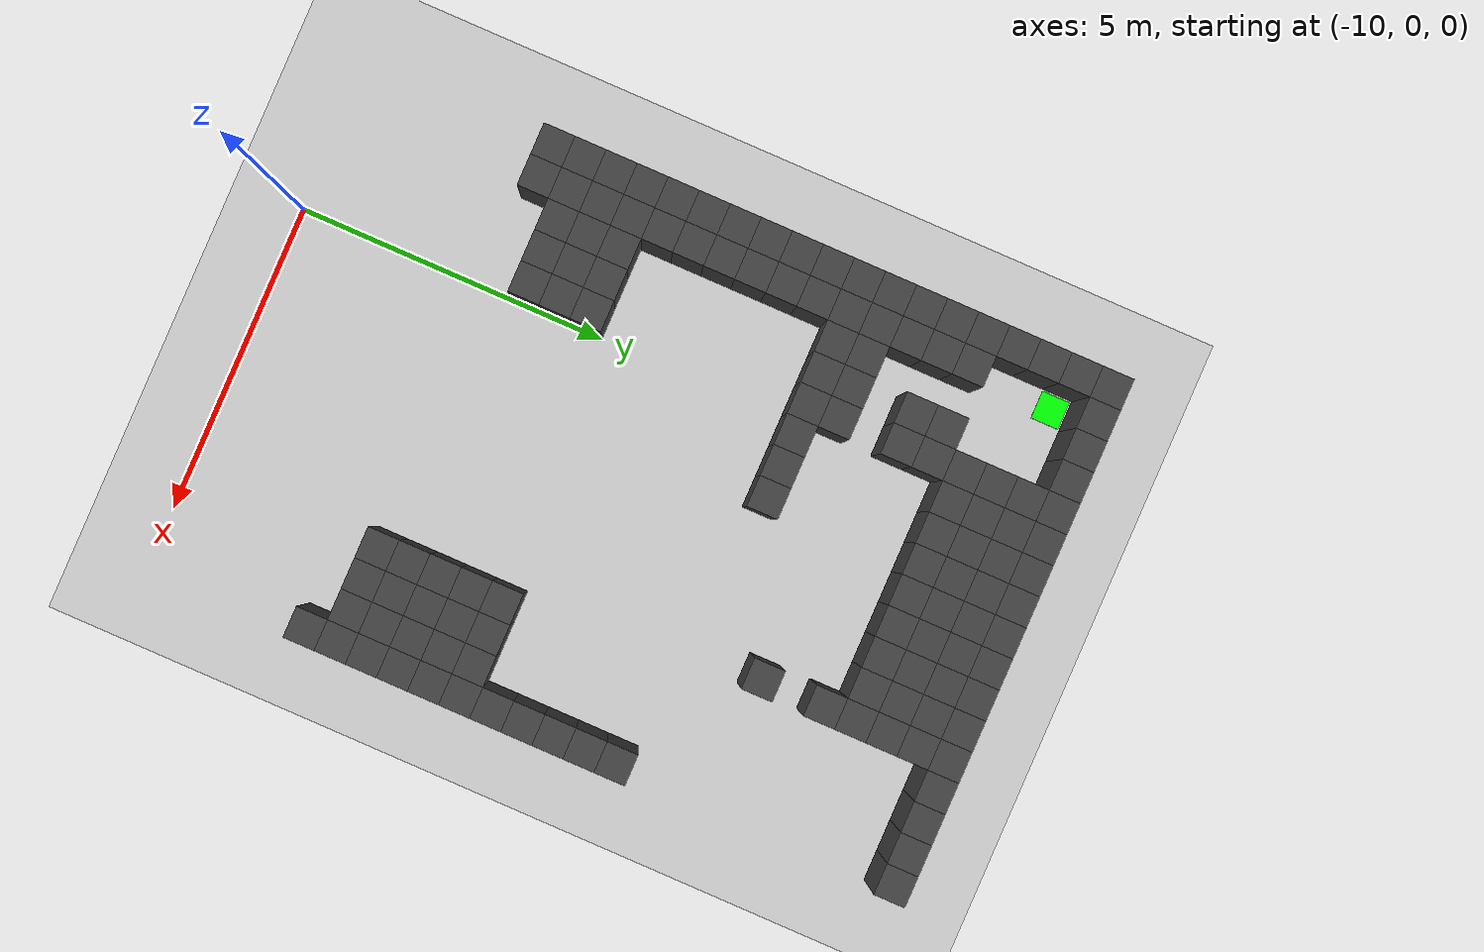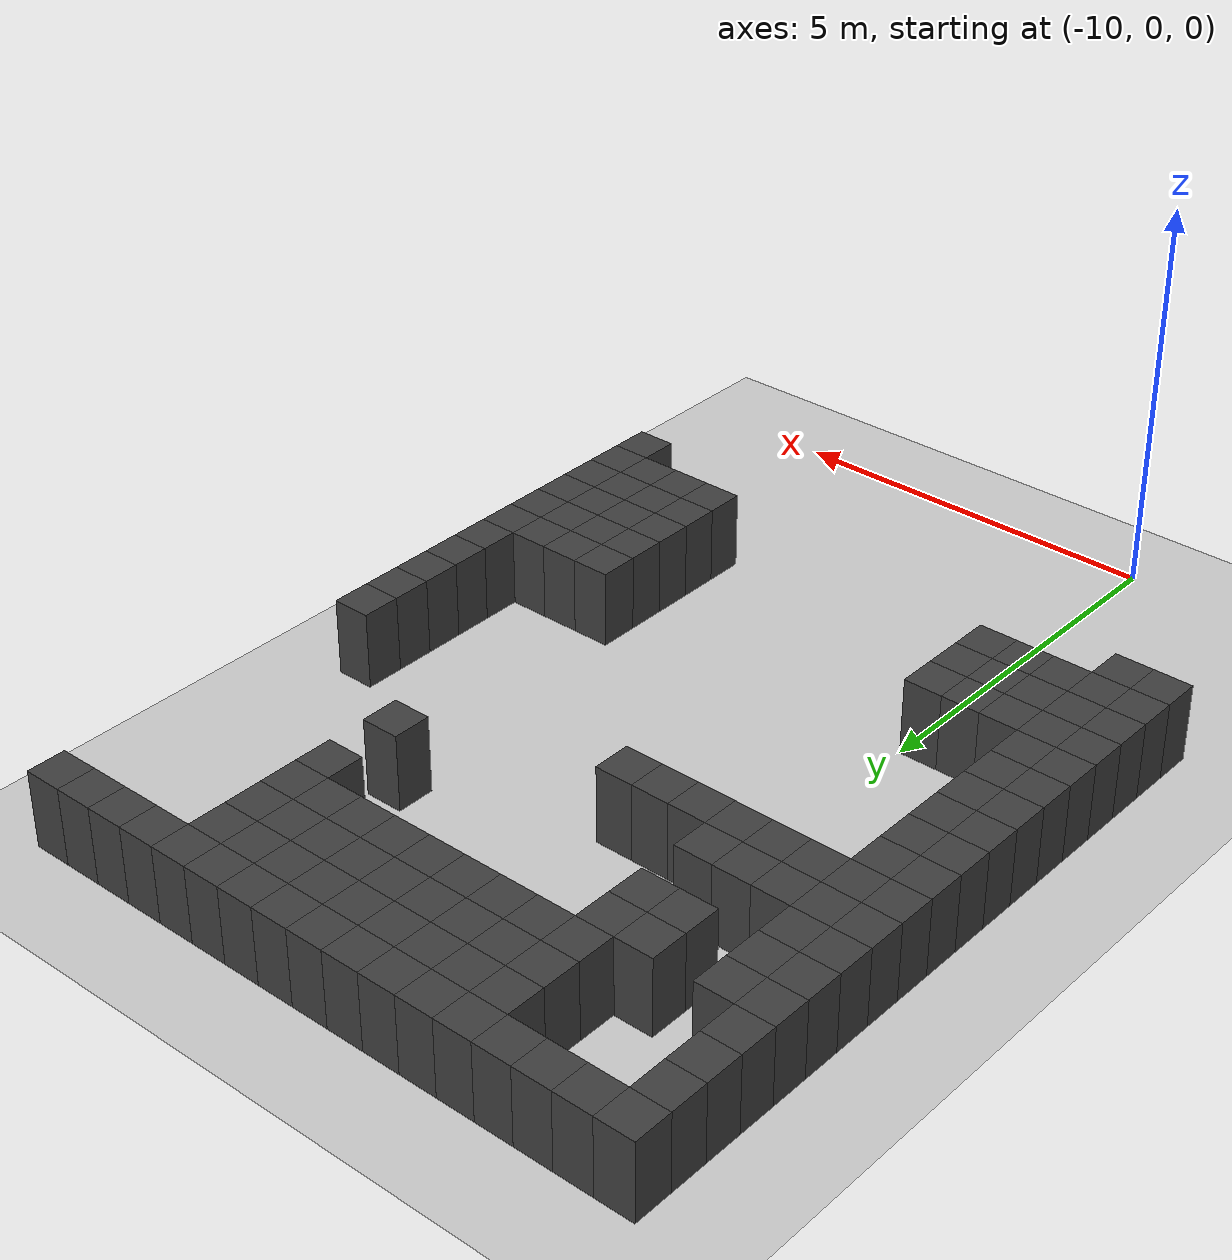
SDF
<sdf version="1.7">
 <world name="map_14735">
  <model name="ground_plane">
   <static>true</static>
   <link name="link">
    <collision name="collision">
     <geometry><plane><normal>0 0 1</normal><size>200 200</size></plane></geometry>
    </collision>
    <visual name="visual">
     <geometry><plane><normal>0 0 1</normal><size>200 200</size></plane></geometry>
     <material><ambient>0.8 0.8 0.8 1</ambient><diffuse>0.8 0.8 0.8 1</diffuse></material>
    </visual>
   </link>
  </model>
  <model name="maze_environment">
   <static>true</static>
   <link name="wall_0">
    <pose>-12.250 12.250 0.500 0 0 0</pose>
    <collision name="col"><geometry><box><size>0.5 0.5 1.0</size></box></geometry></collision>
    <visual name="vis">
     <geometry><box><size>0.5 0.5 1.0</size></box></geometry>
     <material><ambient>0.15 0.15 0.15 1</ambient><diffuse>0.25 0.25 0.25 1</diffuse></material>
    </visual>
   </link>
   <link name="wall_1">
    <pose>-11.750 12.250 0.500 0 0 0</pose>
    <collision name="col"><geometry><box><size>0.5 0.5 1.0</size></box></geometry></collision>
    <visual name="vis">
     <geometry><box><size>0.5 0.5 1.0</size></box></geometry>
     <material><ambient>0.15 0.15 0.15 1</ambient><diffuse>0.25 0.25 0.25 1</diffuse></material>
    </visual>
   </link>
   <link name="wall_2">
    <pose>-11.250 12.250 0.500 0 0 0</pose>
    <collision name="col"><geometry><box><size>0.5 0.5 1.0</size></box></geometry></collision>
    <visual name="vis">
     <geometry><box><size>0.5 0.5 1.0</size></box></geometry>
     <material><ambient>0.15 0.15 0.15 1</ambient><diffuse>0.25 0.25 0.25 1</diffuse></material>
    </visual>
   </link>
   <link name="wall_3">
    <pose>-10.750 12.250 0.500 0 0 0</pose>
    <collision name="col"><geometry><box><size>0.5 0.5 1.0</size></box></geometry></collision>
    <visual name="vis">
     <geometry><box><size>0.5 0.5 1.0</size></box></geometry>
     <material><ambient>0.15 0.15 0.15 1</ambient><diffuse>0.25 0.25 0.25 1</diffuse></material>
    </visual>
   </link>
   <link name="wall_4">
    <pose>-10.250 12.250 0.500 0 0 0</pose>
    <collision name="col"><geometry><box><size>0.5 0.5 1.0</size></box></geometry></collision>
    <visual name="vis">
     <geometry><box><size>0.5 0.5 1.0</size></box></geometry>
     <material><ambient>0.15 0.15 0.15 1</ambient><diffuse>0.25 0.25 0.25 1</diffuse></material>
    </visual>
   </link>
   <link name="wall_5">
    <pose>-9.750 12.250 0.500 0 0 0</pose>
    <collision name="col"><geometry><box><size>0.5 0.5 1.0</size></box></geometry></collision>
    <visual name="vis">
     <geometry><box><size>0.5 0.5 1.0</size></box></geometry>
     <material><ambient>0.15 0.15 0.15 1</ambient><diffuse>0.25 0.25 0.25 1</diffuse></material>
    </visual>
   </link>
   <link name="wall_6">
    <pose>-9.250 12.250 0.500 0 0 0</pose>
    <collision name="col"><geometry><box><size>0.5 0.5 1.0</size></box></geometry></collision>
    <visual name="vis">
     <geometry><box><size>0.5 0.5 1.0</size></box></geometry>
     <material><ambient>0.15 0.15 0.15 1</ambient><diffuse>0.25 0.25 0.25 1</diffuse></material>
    </visual>
   </link>
   <link name="wall_7">
    <pose>-8.750 12.250 0.500 0 0 0</pose>
    <collision name="col"><geometry><box><size>0.5 0.5 1.0</size></box></geometry></collision>
    <visual name="vis">
     <geometry><box><size>0.5 0.5 1.0</size></box></geometry>
     <material><ambient>0.15 0.15 0.15 1</ambient><diffuse>0.25 0.25 0.25 1</diffuse></material>
    </visual>
   </link>
   <link name="wall_8">
    <pose>-8.250 12.250 0.500 0 0 0</pose>
    <collision name="col"><geometry><box><size>0.5 0.5 1.0</size></box></geometry></collision>
    <visual name="vis">
     <geometry><box><size>0.5 0.5 1.0</size></box></geometry>
     <material><ambient>0.15 0.15 0.15 1</ambient><diffuse>0.25 0.25 0.25 1</diffuse></material>
    </visual>
   </link>
   <link name="wall_9">
    <pose>-7.750 12.250 0.500 0 0 0</pose>
    <collision name="col"><geometry><box><size>0.5 0.5 1.0</size></box></geometry></collision>
    <visual name="vis">
     <geometry><box><size>0.5 0.5 1.0</size></box></geometry>
     <material><ambient>0.15 0.15 0.15 1</ambient><diffuse>0.25 0.25 0.25 1</diffuse></material>
    </visual>
   </link>
   <link name="wall_10">
    <pose>-7.250 12.250 0.500 0 0 0</pose>
    <collision name="col"><geometry><box><size>0.5 0.5 1.0</size></box></geometry></collision>
    <visual name="vis">
     <geometry><box><size>0.5 0.5 1.0</size></box></geometry>
     <material><ambient>0.15 0.15 0.15 1</ambient><diffuse>0.25 0.25 0.25 1</diffuse></material>
    </visual>
   </link>
   <link name="wall_11">
    <pose>-6.750 12.250 0.500 0 0 0</pose>
    <collision name="col"><geometry><box><size>0.5 0.5 1.0</size></box></geometry></collision>
    <visual name="vis">
     <geometry><box><size>0.5 0.5 1.0</size></box></geometry>
     <material><ambient>0.15 0.15 0.15 1</ambient><diffuse>0.25 0.25 0.25 1</diffuse></material>
    </visual>
   </link>
   <link name="wall_12">
    <pose>-6.250 12.250 0.500 0 0 0</pose>
    <collision name="col"><geometry><box><size>0.5 0.5 1.0</size></box></geometry></collision>
    <visual name="vis">
     <geometry><box><size>0.5 0.5 1.0</size></box></geometry>
     <material><ambient>0.15 0.15 0.15 1</ambient><diffuse>0.25 0.25 0.25 1</diffuse></material>
    </visual>
   </link>
   <link name="wall_13">
    <pose>-5.750 12.250 0.500 0 0 0</pose>
    <collision name="col"><geometry><box><size>0.5 0.5 1.0</size></box></geometry></collision>
    <visual name="vis">
     <geometry><box><size>0.5 0.5 1.0</size></box></geometry>
     <material><ambient>0.15 0.15 0.15 1</ambient><diffuse>0.25 0.25 0.25 1</diffuse></material>
    </visual>
   </link>
   <link name="wall_14">
    <pose>-5.250 12.250 0.500 0 0 0</pose>
    <collision name="col"><geometry><box><size>0.5 0.5 1.0</size></box></geometry></collision>
    <visual name="vis">
     <geometry><box><size>0.5 0.5 1.0</size></box></geometry>
     <material><ambient>0.15 0.15 0.15 1</ambient><diffuse>0.25 0.25 0.25 1</diffuse></material>
    </visual>
   </link>
   <link name="wall_15">
    <pose>-4.750 12.250 0.500 0 0 0</pose>
    <collision name="col"><geometry><box><size>0.5 0.5 1.0</size></box></geometry></collision>
    <visual name="vis">
     <geometry><box><size>0.5 0.5 1.0</size></box></geometry>
     <material><ambient>0.15 0.15 0.15 1</ambient><diffuse>0.25 0.25 0.25 1</diffuse></material>
    </visual>
   </link>
   <link name="wall_16">
    <pose>-4.250 12.250 0.500 0 0 0</pose>
    <collision name="col"><geometry><box><size>0.5 0.5 1.0</size></box></geometry></collision>
    <visual name="vis">
     <geometry><box><size>0.5 0.5 1.0</size></box></geometry>
     <material><ambient>0.15 0.15 0.15 1</ambient><diffuse>0.25 0.25 0.25 1</diffuse></material>
    </visual>
   </link>
   <link name="wall_50">
    <pose>-12.250 11.750 0.500 0 0 0</pose>
    <collision name="col"><geometry><box><size>0.5 0.5 1.0</size></box></geometry></collision>
    <visual name="vis">
     <geometry><box><size>0.5 0.5 1.0</size></box></geometry>
     <material><ambient>0.15 0.15 0.15 1</ambient><diffuse>0.25 0.25 0.25 1</diffuse></material>
    </visual>
   </link>
   <link name="wall_51">
    <pose>-10.250 11.750 0.500 0 0 0</pose>
    <collision name="col"><geometry><box><size>0.5 0.5 1.0</size></box></geometry></collision>
    <visual name="vis">
     <geometry><box><size>0.5 0.5 1.0</size></box></geometry>
     <material><ambient>0.15 0.15 0.15 1</ambient><diffuse>0.25 0.25 0.25 1</diffuse></material>
    </visual>
   </link>
   <link name="wall_52">
    <pose>-9.750 11.750 0.500 0 0 0</pose>
    <collision name="col"><geometry><box><size>0.5 0.5 1.0</size></box></geometry></collision>
    <visual name="vis">
     <geometry><box><size>0.5 0.5 1.0</size></box></geometry>
     <material><ambient>0.15 0.15 0.15 1</ambient><diffuse>0.25 0.25 0.25 1</diffuse></material>
    </visual>
   </link>
   <link name="wall_53">
    <pose>-9.250 11.750 0.500 0 0 0</pose>
    <collision name="col"><geometry><box><size>0.5 0.5 1.0</size></box></geometry></collision>
    <visual name="vis">
     <geometry><box><size>0.5 0.5 1.0</size></box></geometry>
     <material><ambient>0.15 0.15 0.15 1</ambient><diffuse>0.25 0.25 0.25 1</diffuse></material>
    </visual>
   </link>
   <link name="wall_54">
    <pose>-8.750 11.750 0.500 0 0 0</pose>
    <collision name="col"><geometry><box><size>0.5 0.5 1.0</size></box></geometry></collision>
    <visual name="vis">
     <geometry><box><size>0.5 0.5 1.0</size></box></geometry>
     <material><ambient>0.15 0.15 0.15 1</ambient><diffuse>0.25 0.25 0.25 1</diffuse></material>
    </visual>
   </link>
   <link name="wall_55">
    <pose>-8.250 11.750 0.500 0 0 0</pose>
    <collision name="col"><geometry><box><size>0.5 0.5 1.0</size></box></geometry></collision>
    <visual name="vis">
     <geometry><box><size>0.5 0.5 1.0</size></box></geometry>
     <material><ambient>0.15 0.15 0.15 1</ambient><diffuse>0.25 0.25 0.25 1</diffuse></material>
    </visual>
   </link>
   <link name="wall_56">
    <pose>-7.750 11.750 0.500 0 0 0</pose>
    <collision name="col"><geometry><box><size>0.5 0.5 1.0</size></box></geometry></collision>
    <visual name="vis">
     <geometry><box><size>0.5 0.5 1.0</size></box></geometry>
     <material><ambient>0.15 0.15 0.15 1</ambient><diffuse>0.25 0.25 0.25 1</diffuse></material>
    </visual>
   </link>
   <link name="wall_57">
    <pose>-7.250 11.750 0.500 0 0 0</pose>
    <collision name="col"><geometry><box><size>0.5 0.5 1.0</size></box></geometry></collision>
    <visual name="vis">
     <geometry><box><size>0.5 0.5 1.0</size></box></geometry>
     <material><ambient>0.15 0.15 0.15 1</ambient><diffuse>0.25 0.25 0.25 1</diffuse></material>
    </visual>
   </link>
   <link name="wall_58">
    <pose>-6.750 11.750 0.500 0 0 0</pose>
    <collision name="col"><geometry><box><size>0.5 0.5 1.0</size></box></geometry></collision>
    <visual name="vis">
     <geometry><box><size>0.5 0.5 1.0</size></box></geometry>
     <material><ambient>0.15 0.15 0.15 1</ambient><diffuse>0.25 0.25 0.25 1</diffuse></material>
    </visual>
   </link>
   <link name="wall_59">
    <pose>-6.250 11.750 0.500 0 0 0</pose>
    <collision name="col"><geometry><box><size>0.5 0.5 1.0</size></box></geometry></collision>
    <visual name="vis">
     <geometry><box><size>0.5 0.5 1.0</size></box></geometry>
     <material><ambient>0.15 0.15 0.15 1</ambient><diffuse>0.25 0.25 0.25 1</diffuse></material>
    </visual>
   </link>
   <link name="wall_92">
    <pose>-12.250 11.250 0.500 0 0 0</pose>
    <collision name="col"><geometry><box><size>0.5 0.5 1.0</size></box></geometry></collision>
    <visual name="vis">
     <geometry><box><size>0.5 0.5 1.0</size></box></geometry>
     <material><ambient>0.15 0.15 0.15 1</ambient><diffuse>0.25 0.25 0.25 1</diffuse></material>
    </visual>
   </link>
   <link name="wall_93">
    <pose>-10.250 11.250 0.500 0 0 0</pose>
    <collision name="col"><geometry><box><size>0.5 0.5 1.0</size></box></geometry></collision>
    <visual name="vis">
     <geometry><box><size>0.5 0.5 1.0</size></box></geometry>
     <material><ambient>0.15 0.15 0.15 1</ambient><diffuse>0.25 0.25 0.25 1</diffuse></material>
    </visual>
   </link>
   <link name="wall_94">
    <pose>-9.750 11.250 0.500 0 0 0</pose>
    <collision name="col"><geometry><box><size>0.5 0.5 1.0</size></box></geometry></collision>
    <visual name="vis">
     <geometry><box><size>0.5 0.5 1.0</size></box></geometry>
     <material><ambient>0.15 0.15 0.15 1</ambient><diffuse>0.25 0.25 0.25 1</diffuse></material>
    </visual>
   </link>
   <link name="wall_95">
    <pose>-9.250 11.250 0.500 0 0 0</pose>
    <collision name="col"><geometry><box><size>0.5 0.5 1.0</size></box></geometry></collision>
    <visual name="vis">
     <geometry><box><size>0.5 0.5 1.0</size></box></geometry>
     <material><ambient>0.15 0.15 0.15 1</ambient><diffuse>0.25 0.25 0.25 1</diffuse></material>
    </visual>
   </link>
   <link name="wall_96">
    <pose>-8.750 11.250 0.500 0 0 0</pose>
    <collision name="col"><geometry><box><size>0.5 0.5 1.0</size></box></geometry></collision>
    <visual name="vis">
     <geometry><box><size>0.5 0.5 1.0</size></box></geometry>
     <material><ambient>0.15 0.15 0.15 1</ambient><diffuse>0.25 0.25 0.25 1</diffuse></material>
    </visual>
   </link>
   <link name="wall_97">
    <pose>-8.250 11.250 0.500 0 0 0</pose>
    <collision name="col"><geometry><box><size>0.5 0.5 1.0</size></box></geometry></collision>
    <visual name="vis">
     <geometry><box><size>0.5 0.5 1.0</size></box></geometry>
     <material><ambient>0.15 0.15 0.15 1</ambient><diffuse>0.25 0.25 0.25 1</diffuse></material>
    </visual>
   </link>
   <link name="wall_98">
    <pose>-7.750 11.250 0.500 0 0 0</pose>
    <collision name="col"><geometry><box><size>0.5 0.5 1.0</size></box></geometry></collision>
    <visual name="vis">
     <geometry><box><size>0.5 0.5 1.0</size></box></geometry>
     <material><ambient>0.15 0.15 0.15 1</ambient><diffuse>0.25 0.25 0.25 1</diffuse></material>
    </visual>
   </link>
   <link name="wall_99">
    <pose>-7.250 11.250 0.500 0 0 0</pose>
    <collision name="col"><geometry><box><size>0.5 0.5 1.0</size></box></geometry></collision>
    <visual name="vis">
     <geometry><box><size>0.5 0.5 1.0</size></box></geometry>
     <material><ambient>0.15 0.15 0.15 1</ambient><diffuse>0.25 0.25 0.25 1</diffuse></material>
    </visual>
   </link>
   <link name="wall_100">
    <pose>-6.750 11.250 0.500 0 0 0</pose>
    <collision name="col"><geometry><box><size>0.5 0.5 1.0</size></box></geometry></collision>
    <visual name="vis">
     <geometry><box><size>0.5 0.5 1.0</size></box></geometry>
     <material><ambient>0.15 0.15 0.15 1</ambient><diffuse>0.25 0.25 0.25 1</diffuse></material>
    </visual>
   </link>
   <link name="wall_101">
    <pose>-6.250 11.250 0.500 0 0 0</pose>
    <collision name="col"><geometry><box><size>0.5 0.5 1.0</size></box></geometry></collision>
    <visual name="vis">
     <geometry><box><size>0.5 0.5 1.0</size></box></geometry>
     <material><ambient>0.15 0.15 0.15 1</ambient><diffuse>0.25 0.25 0.25 1</diffuse></material>
    </visual>
   </link>
   <link name="wall_134">
    <pose>-12.250 10.750 0.500 0 0 0</pose>
    <collision name="col"><geometry><box><size>0.5 0.5 1.0</size></box></geometry></collision>
    <visual name="vis">
     <geometry><box><size>0.5 0.5 1.0</size></box></geometry>
     <material><ambient>0.15 0.15 0.15 1</ambient><diffuse>0.25 0.25 0.25 1</diffuse></material>
    </visual>
   </link>
   <link name="wall_135">
    <pose>-10.250 10.750 0.500 0 0 0</pose>
    <collision name="col"><geometry><box><size>0.5 0.5 1.0</size></box></geometry></collision>
    <visual name="vis">
     <geometry><box><size>0.5 0.5 1.0</size></box></geometry>
     <material><ambient>0.15 0.15 0.15 1</ambient><diffuse>0.25 0.25 0.25 1</diffuse></material>
    </visual>
   </link>
   <link name="wall_136">
    <pose>-9.750 10.750 0.500 0 0 0</pose>
    <collision name="col"><geometry><box><size>0.5 0.5 1.0</size></box></geometry></collision>
    <visual name="vis">
     <geometry><box><size>0.5 0.5 1.0</size></box></geometry>
     <material><ambient>0.15 0.15 0.15 1</ambient><diffuse>0.25 0.25 0.25 1</diffuse></material>
    </visual>
   </link>
   <link name="wall_137">
    <pose>-9.250 10.750 0.500 0 0 0</pose>
    <collision name="col"><geometry><box><size>0.5 0.5 1.0</size></box></geometry></collision>
    <visual name="vis">
     <geometry><box><size>0.5 0.5 1.0</size></box></geometry>
     <material><ambient>0.15 0.15 0.15 1</ambient><diffuse>0.25 0.25 0.25 1</diffuse></material>
    </visual>
   </link>
   <link name="wall_138">
    <pose>-8.750 10.750 0.500 0 0 0</pose>
    <collision name="col"><geometry><box><size>0.5 0.5 1.0</size></box></geometry></collision>
    <visual name="vis">
     <geometry><box><size>0.5 0.5 1.0</size></box></geometry>
     <material><ambient>0.15 0.15 0.15 1</ambient><diffuse>0.25 0.25 0.25 1</diffuse></material>
    </visual>
   </link>
   <link name="wall_139">
    <pose>-8.250 10.750 0.500 0 0 0</pose>
    <collision name="col"><geometry><box><size>0.5 0.5 1.0</size></box></geometry></collision>
    <visual name="vis">
     <geometry><box><size>0.5 0.5 1.0</size></box></geometry>
     <material><ambient>0.15 0.15 0.15 1</ambient><diffuse>0.25 0.25 0.25 1</diffuse></material>
    </visual>
   </link>
   <link name="wall_140">
    <pose>-7.750 10.750 0.500 0 0 0</pose>
    <collision name="col"><geometry><box><size>0.5 0.5 1.0</size></box></geometry></collision>
    <visual name="vis">
     <geometry><box><size>0.5 0.5 1.0</size></box></geometry>
     <material><ambient>0.15 0.15 0.15 1</ambient><diffuse>0.25 0.25 0.25 1</diffuse></material>
    </visual>
   </link>
   <link name="wall_141">
    <pose>-7.250 10.750 0.500 0 0 0</pose>
    <collision name="col"><geometry><box><size>0.5 0.5 1.0</size></box></geometry></collision>
    <visual name="vis">
     <geometry><box><size>0.5 0.5 1.0</size></box></geometry>
     <material><ambient>0.15 0.15 0.15 1</ambient><diffuse>0.25 0.25 0.25 1</diffuse></material>
    </visual>
   </link>
   <link name="wall_142">
    <pose>-6.750 10.750 0.500 0 0 0</pose>
    <collision name="col"><geometry><box><size>0.5 0.5 1.0</size></box></geometry></collision>
    <visual name="vis">
     <geometry><box><size>0.5 0.5 1.0</size></box></geometry>
     <material><ambient>0.15 0.15 0.15 1</ambient><diffuse>0.25 0.25 0.25 1</diffuse></material>
    </visual>
   </link>
   <link name="wall_143">
    <pose>-6.250 10.750 0.500 0 0 0</pose>
    <collision name="col"><geometry><box><size>0.5 0.5 1.0</size></box></geometry></collision>
    <visual name="vis">
     <geometry><box><size>0.5 0.5 1.0</size></box></geometry>
     <material><ambient>0.15 0.15 0.15 1</ambient><diffuse>0.25 0.25 0.25 1</diffuse></material>
    </visual>
   </link>
   <link name="wall_168">
    <pose>-12.250 10.250 0.500 0 0 0</pose>
    <collision name="col"><geometry><box><size>0.5 0.5 1.0</size></box></geometry></collision>
    <visual name="vis">
     <geometry><box><size>0.5 0.5 1.0</size></box></geometry>
     <material><ambient>0.15 0.15 0.15 1</ambient><diffuse>0.25 0.25 0.25 1</diffuse></material>
    </visual>
   </link>
   <link name="wall_169">
    <pose>-11.750 10.250 0.500 0 0 0</pose>
    <collision name="col"><geometry><box><size>0.5 0.5 1.0</size></box></geometry></collision>
    <visual name="vis">
     <geometry><box><size>0.5 0.5 1.0</size></box></geometry>
     <material><ambient>0.15 0.15 0.15 1</ambient><diffuse>0.25 0.25 0.25 1</diffuse></material>
    </visual>
   </link>
   <link name="wall_170">
    <pose>-10.750 10.250 0.500 0 0 0</pose>
    <collision name="col"><geometry><box><size>0.5 0.5 1.0</size></box></geometry></collision>
    <visual name="vis">
     <geometry><box><size>0.5 0.5 1.0</size></box></geometry>
     <material><ambient>0.15 0.15 0.15 1</ambient><diffuse>0.25 0.25 0.25 1</diffuse></material>
    </visual>
   </link>
   <link name="wall_171">
    <pose>-10.250 10.250 0.500 0 0 0</pose>
    <collision name="col"><geometry><box><size>0.5 0.5 1.0</size></box></geometry></collision>
    <visual name="vis">
     <geometry><box><size>0.5 0.5 1.0</size></box></geometry>
     <material><ambient>0.15 0.15 0.15 1</ambient><diffuse>0.25 0.25 0.25 1</diffuse></material>
    </visual>
   </link>
   <link name="wall_172">
    <pose>-6.250 10.250 0.500 0 0 0</pose>
    <collision name="col"><geometry><box><size>0.5 0.5 1.0</size></box></geometry></collision>
    <visual name="vis">
     <geometry><box><size>0.5 0.5 1.0</size></box></geometry>
     <material><ambient>0.15 0.15 0.15 1</ambient><diffuse>0.25 0.25 0.25 1</diffuse></material>
    </visual>
   </link>
   <link name="wall_197">
    <pose>-12.250 9.750 0.500 0 0 0</pose>
    <collision name="col"><geometry><box><size>0.5 0.5 1.0</size></box></geometry></collision>
    <visual name="vis">
     <geometry><box><size>0.5 0.5 1.0</size></box></geometry>
     <material><ambient>0.15 0.15 0.15 1</ambient><diffuse>0.25 0.25 0.25 1</diffuse></material>
    </visual>
   </link>
   <link name="wall_198">
    <pose>-11.750 9.750 0.500 0 0 0</pose>
    <collision name="col"><geometry><box><size>0.5 0.5 1.0</size></box></geometry></collision>
    <visual name="vis">
     <geometry><box><size>0.5 0.5 1.0</size></box></geometry>
     <material><ambient>0.15 0.15 0.15 1</ambient><diffuse>0.25 0.25 0.25 1</diffuse></material>
    </visual>
   </link>
   <link name="wall_199">
    <pose>-10.750 9.750 0.500 0 0 0</pose>
    <collision name="col"><geometry><box><size>0.5 0.5 1.0</size></box></geometry></collision>
    <visual name="vis">
     <geometry><box><size>0.5 0.5 1.0</size></box></geometry>
     <material><ambient>0.15 0.15 0.15 1</ambient><diffuse>0.25 0.25 0.25 1</diffuse></material>
    </visual>
   </link>
   <link name="wall_200">
    <pose>-10.250 9.750 0.500 0 0 0</pose>
    <collision name="col"><geometry><box><size>0.5 0.5 1.0</size></box></geometry></collision>
    <visual name="vis">
     <geometry><box><size>0.5 0.5 1.0</size></box></geometry>
     <material><ambient>0.15 0.15 0.15 1</ambient><diffuse>0.25 0.25 0.25 1</diffuse></material>
    </visual>
   </link>
   <link name="wall_219">
    <pose>-12.250 9.250 0.500 0 0 0</pose>
    <collision name="col"><geometry><box><size>0.5 0.5 1.0</size></box></geometry></collision>
    <visual name="vis">
     <geometry><box><size>0.5 0.5 1.0</size></box></geometry>
     <material><ambient>0.15 0.15 0.15 1</ambient><diffuse>0.25 0.25 0.25 1</diffuse></material>
    </visual>
   </link>
   <link name="wall_220">
    <pose>-11.750 9.250 0.500 0 0 0</pose>
    <collision name="col"><geometry><box><size>0.5 0.5 1.0</size></box></geometry></collision>
    <visual name="vis">
     <geometry><box><size>0.5 0.5 1.0</size></box></geometry>
     <material><ambient>0.15 0.15 0.15 1</ambient><diffuse>0.25 0.25 0.25 1</diffuse></material>
    </visual>
   </link>
   <link name="wall_221">
    <pose>-6.250 9.250 0.500 0 0 0</pose>
    <collision name="col"><geometry><box><size>0.5 0.5 1.0</size></box></geometry></collision>
    <visual name="vis">
     <geometry><box><size>0.5 0.5 1.0</size></box></geometry>
     <material><ambient>0.15 0.15 0.15 1</ambient><diffuse>0.25 0.25 0.25 1</diffuse></material>
    </visual>
   </link>
   <link name="wall_240">
    <pose>-12.250 8.750 0.500 0 0 0</pose>
    <collision name="col"><geometry><box><size>0.5 0.5 1.0</size></box></geometry></collision>
    <visual name="vis">
     <geometry><box><size>0.5 0.5 1.0</size></box></geometry>
     <material><ambient>0.15 0.15 0.15 1</ambient><diffuse>0.25 0.25 0.25 1</diffuse></material>
    </visual>
   </link>
   <link name="wall_241">
    <pose>-11.750 8.750 0.500 0 0 0</pose>
    <collision name="col"><geometry><box><size>0.5 0.5 1.0</size></box></geometry></collision>
    <visual name="vis">
     <geometry><box><size>0.5 0.5 1.0</size></box></geometry>
     <material><ambient>0.15 0.15 0.15 1</ambient><diffuse>0.25 0.25 0.25 1</diffuse></material>
    </visual>
   </link>
   <link name="wall_242">
    <pose>-11.250 8.750 0.500 0 0 0</pose>
    <collision name="col"><geometry><box><size>0.5 0.5 1.0</size></box></geometry></collision>
    <visual name="vis">
     <geometry><box><size>0.5 0.5 1.0</size></box></geometry>
     <material><ambient>0.15 0.15 0.15 1</ambient><diffuse>0.25 0.25 0.25 1</diffuse></material>
    </visual>
   </link>
   <link name="wall_243">
    <pose>-10.750 8.750 0.500 0 0 0</pose>
    <collision name="col"><geometry><box><size>0.5 0.5 1.0</size></box></geometry></collision>
    <visual name="vis">
     <geometry><box><size>0.5 0.5 1.0</size></box></geometry>
     <material><ambient>0.15 0.15 0.15 1</ambient><diffuse>0.25 0.25 0.25 1</diffuse></material>
    </visual>
   </link>
   <link name="wall_244">
    <pose>-10.250 8.750 0.500 0 0 0</pose>
    <collision name="col"><geometry><box><size>0.5 0.5 1.0</size></box></geometry></collision>
    <visual name="vis">
     <geometry><box><size>0.5 0.5 1.0</size></box></geometry>
     <material><ambient>0.15 0.15 0.15 1</ambient><diffuse>0.25 0.25 0.25 1</diffuse></material>
    </visual>
   </link>
   <link name="wall_262">
    <pose>-12.250 8.250 0.500 0 0 0</pose>
    <collision name="col"><geometry><box><size>0.5 0.5 1.0</size></box></geometry></collision>
    <visual name="vis">
     <geometry><box><size>0.5 0.5 1.0</size></box></geometry>
     <material><ambient>0.15 0.15 0.15 1</ambient><diffuse>0.25 0.25 0.25 1</diffuse></material>
    </visual>
   </link>
   <link name="wall_263">
    <pose>-11.750 8.250 0.500 0 0 0</pose>
    <collision name="col"><geometry><box><size>0.5 0.5 1.0</size></box></geometry></collision>
    <visual name="vis">
     <geometry><box><size>0.5 0.5 1.0</size></box></geometry>
     <material><ambient>0.15 0.15 0.15 1</ambient><diffuse>0.25 0.25 0.25 1</diffuse></material>
    </visual>
   </link>
   <link name="wall_264">
    <pose>-11.250 8.250 0.500 0 0 0</pose>
    <collision name="col"><geometry><box><size>0.5 0.5 1.0</size></box></geometry></collision>
    <visual name="vis">
     <geometry><box><size>0.5 0.5 1.0</size></box></geometry>
     <material><ambient>0.15 0.15 0.15 1</ambient><diffuse>0.25 0.25 0.25 1</diffuse></material>
    </visual>
   </link>
   <link name="wall_265">
    <pose>-10.750 8.250 0.500 0 0 0</pose>
    <collision name="col"><geometry><box><size>0.5 0.5 1.0</size></box></geometry></collision>
    <visual name="vis">
     <geometry><box><size>0.5 0.5 1.0</size></box></geometry>
     <material><ambient>0.15 0.15 0.15 1</ambient><diffuse>0.25 0.25 0.25 1</diffuse></material>
    </visual>
   </link>
   <link name="wall_266">
    <pose>-10.250 8.250 0.500 0 0 0</pose>
    <collision name="col"><geometry><box><size>0.5 0.5 1.0</size></box></geometry></collision>
    <visual name="vis">
     <geometry><box><size>0.5 0.5 1.0</size></box></geometry>
     <material><ambient>0.15 0.15 0.15 1</ambient><diffuse>0.25 0.25 0.25 1</diffuse></material>
    </visual>
   </link>
   <link name="wall_267">
    <pose>-9.750 8.250 0.500 0 0 0</pose>
    <collision name="col"><geometry><box><size>0.5 0.5 1.0</size></box></geometry></collision>
    <visual name="vis">
     <geometry><box><size>0.5 0.5 1.0</size></box></geometry>
     <material><ambient>0.15 0.15 0.15 1</ambient><diffuse>0.25 0.25 0.25 1</diffuse></material>
    </visual>
   </link>
   <link name="wall_268">
    <pose>-9.250 8.250 0.500 0 0 0</pose>
    <collision name="col"><geometry><box><size>0.5 0.5 1.0</size></box></geometry></collision>
    <visual name="vis">
     <geometry><box><size>0.5 0.5 1.0</size></box></geometry>
     <material><ambient>0.15 0.15 0.15 1</ambient><diffuse>0.25 0.25 0.25 1</diffuse></material>
    </visual>
   </link>
   <link name="wall_269">
    <pose>-8.750 8.250 0.500 0 0 0</pose>
    <collision name="col"><geometry><box><size>0.5 0.5 1.0</size></box></geometry></collision>
    <visual name="vis">
     <geometry><box><size>0.5 0.5 1.0</size></box></geometry>
     <material><ambient>0.15 0.15 0.15 1</ambient><diffuse>0.25 0.25 0.25 1</diffuse></material>
    </visual>
   </link>
   <link name="wall_282">
    <pose>-12.250 7.750 0.500 0 0 0</pose>
    <collision name="col"><geometry><box><size>0.5 0.5 1.0</size></box></geometry></collision>
    <visual name="vis">
     <geometry><box><size>0.5 0.5 1.0</size></box></geometry>
     <material><ambient>0.15 0.15 0.15 1</ambient><diffuse>0.25 0.25 0.25 1</diffuse></material>
    </visual>
   </link>
   <link name="wall_283">
    <pose>-11.750 7.750 0.500 0 0 0</pose>
    <collision name="col"><geometry><box><size>0.5 0.5 1.0</size></box></geometry></collision>
    <visual name="vis">
     <geometry><box><size>0.5 0.5 1.0</size></box></geometry>
     <material><ambient>0.15 0.15 0.15 1</ambient><diffuse>0.25 0.25 0.25 1</diffuse></material>
    </visual>
   </link>
   <link name="wall_284">
    <pose>-4.250 7.750 0.500 0 0 0</pose>
    <collision name="col"><geometry><box><size>0.5 0.5 1.0</size></box></geometry></collision>
    <visual name="vis">
     <geometry><box><size>0.5 0.5 1.0</size></box></geometry>
     <material><ambient>0.15 0.15 0.15 1</ambient><diffuse>0.25 0.25 0.25 1</diffuse></material>
    </visual>
   </link>
   <link name="wall_304">
    <pose>-12.250 7.250 0.500 0 0 0</pose>
    <collision name="col"><geometry><box><size>0.5 0.5 1.0</size></box></geometry></collision>
    <visual name="vis">
     <geometry><box><size>0.5 0.5 1.0</size></box></geometry>
     <material><ambient>0.15 0.15 0.15 1</ambient><diffuse>0.25 0.25 0.25 1</diffuse></material>
    </visual>
   </link>
   <link name="wall_305">
    <pose>-11.750 7.250 0.500 0 0 0</pose>
    <collision name="col"><geometry><box><size>0.5 0.5 1.0</size></box></geometry></collision>
    <visual name="vis">
     <geometry><box><size>0.5 0.5 1.0</size></box></geometry>
     <material><ambient>0.15 0.15 0.15 1</ambient><diffuse>0.25 0.25 0.25 1</diffuse></material>
    </visual>
   </link>
   <link name="wall_306">
    <pose>-4.250 7.250 0.500 0 0 0</pose>
    <collision name="col"><geometry><box><size>0.5 0.5 1.0</size></box></geometry></collision>
    <visual name="vis">
     <geometry><box><size>0.5 0.5 1.0</size></box></geometry>
     <material><ambient>0.15 0.15 0.15 1</ambient><diffuse>0.25 0.25 0.25 1</diffuse></material>
    </visual>
   </link>
   <link name="wall_326">
    <pose>-12.250 6.750 0.500 0 0 0</pose>
    <collision name="col"><geometry><box><size>0.5 0.5 1.0</size></box></geometry></collision>
    <visual name="vis">
     <geometry><box><size>0.5 0.5 1.0</size></box></geometry>
     <material><ambient>0.15 0.15 0.15 1</ambient><diffuse>0.25 0.25 0.25 1</diffuse></material>
    </visual>
   </link>
   <link name="wall_327">
    <pose>-11.750 6.750 0.500 0 0 0</pose>
    <collision name="col"><geometry><box><size>0.5 0.5 1.0</size></box></geometry></collision>
    <visual name="vis">
     <geometry><box><size>0.5 0.5 1.0</size></box></geometry>
     <material><ambient>0.15 0.15 0.15 1</ambient><diffuse>0.25 0.25 0.25 1</diffuse></material>
    </visual>
   </link>
   <link name="wall_328">
    <pose>-4.250 6.750 0.500 0 0 0</pose>
    <collision name="col"><geometry><box><size>0.5 0.5 1.0</size></box></geometry></collision>
    <visual name="vis">
     <geometry><box><size>0.5 0.5 1.0</size></box></geometry>
     <material><ambient>0.15 0.15 0.15 1</ambient><diffuse>0.25 0.25 0.25 1</diffuse></material>
    </visual>
   </link>
   <link name="wall_355">
    <pose>-12.250 6.250 0.500 0 0 0</pose>
    <collision name="col"><geometry><box><size>0.5 0.5 1.0</size></box></geometry></collision>
    <visual name="vis">
     <geometry><box><size>0.5 0.5 1.0</size></box></geometry>
     <material><ambient>0.15 0.15 0.15 1</ambient><diffuse>0.25 0.25 0.25 1</diffuse></material>
    </visual>
   </link>
   <link name="wall_356">
    <pose>-11.750 6.250 0.500 0 0 0</pose>
    <collision name="col"><geometry><box><size>0.5 0.5 1.0</size></box></geometry></collision>
    <visual name="vis">
     <geometry><box><size>0.5 0.5 1.0</size></box></geometry>
     <material><ambient>0.15 0.15 0.15 1</ambient><diffuse>0.25 0.25 0.25 1</diffuse></material>
    </visual>
   </link>
   <link name="wall_357">
    <pose>-4.250 6.250 0.500 0 0 0</pose>
    <collision name="col"><geometry><box><size>0.5 0.5 1.0</size></box></geometry></collision>
    <visual name="vis">
     <geometry><box><size>0.5 0.5 1.0</size></box></geometry>
     <material><ambient>0.15 0.15 0.15 1</ambient><diffuse>0.25 0.25 0.25 1</diffuse></material>
    </visual>
   </link>
   <link name="wall_389">
    <pose>-12.250 5.750 0.500 0 0 0</pose>
    <collision name="col"><geometry><box><size>0.5 0.5 1.0</size></box></geometry></collision>
    <visual name="vis">
     <geometry><box><size>0.5 0.5 1.0</size></box></geometry>
     <material><ambient>0.15 0.15 0.15 1</ambient><diffuse>0.25 0.25 0.25 1</diffuse></material>
    </visual>
   </link>
   <link name="wall_390">
    <pose>-11.750 5.750 0.500 0 0 0</pose>
    <collision name="col"><geometry><box><size>0.5 0.5 1.0</size></box></geometry></collision>
    <visual name="vis">
     <geometry><box><size>0.5 0.5 1.0</size></box></geometry>
     <material><ambient>0.15 0.15 0.15 1</ambient><diffuse>0.25 0.25 0.25 1</diffuse></material>
    </visual>
   </link>
   <link name="wall_391">
    <pose>-4.250 5.750 0.500 0 0 0</pose>
    <collision name="col"><geometry><box><size>0.5 0.5 1.0</size></box></geometry></collision>
    <visual name="vis">
     <geometry><box><size>0.5 0.5 1.0</size></box></geometry>
     <material><ambient>0.15 0.15 0.15 1</ambient><diffuse>0.25 0.25 0.25 1</diffuse></material>
    </visual>
   </link>
   <link name="wall_423">
    <pose>-12.250 5.250 0.500 0 0 0</pose>
    <collision name="col"><geometry><box><size>0.5 0.5 1.0</size></box></geometry></collision>
    <visual name="vis">
     <geometry><box><size>0.5 0.5 1.0</size></box></geometry>
     <material><ambient>0.15 0.15 0.15 1</ambient><diffuse>0.25 0.25 0.25 1</diffuse></material>
    </visual>
   </link>
   <link name="wall_424">
    <pose>-11.750 5.250 0.500 0 0 0</pose>
    <collision name="col"><geometry><box><size>0.5 0.5 1.0</size></box></geometry></collision>
    <visual name="vis">
     <geometry><box><size>0.5 0.5 1.0</size></box></geometry>
     <material><ambient>0.15 0.15 0.15 1</ambient><diffuse>0.25 0.25 0.25 1</diffuse></material>
    </visual>
   </link>
   <link name="wall_425">
    <pose>-5.750 5.250 0.500 0 0 0</pose>
    <collision name="col"><geometry><box><size>0.5 0.5 1.0</size></box></geometry></collision>
    <visual name="vis">
     <geometry><box><size>0.5 0.5 1.0</size></box></geometry>
     <material><ambient>0.15 0.15 0.15 1</ambient><diffuse>0.25 0.25 0.25 1</diffuse></material>
    </visual>
   </link>
   <link name="wall_426">
    <pose>-5.250 5.250 0.500 0 0 0</pose>
    <collision name="col"><geometry><box><size>0.5 0.5 1.0</size></box></geometry></collision>
    <visual name="vis">
     <geometry><box><size>0.5 0.5 1.0</size></box></geometry>
     <material><ambient>0.15 0.15 0.15 1</ambient><diffuse>0.25 0.25 0.25 1</diffuse></material>
    </visual>
   </link>
   <link name="wall_427">
    <pose>-4.750 5.250 0.500 0 0 0</pose>
    <collision name="col"><geometry><box><size>0.5 0.5 1.0</size></box></geometry></collision>
    <visual name="vis">
     <geometry><box><size>0.5 0.5 1.0</size></box></geometry>
     <material><ambient>0.15 0.15 0.15 1</ambient><diffuse>0.25 0.25 0.25 1</diffuse></material>
    </visual>
   </link>
   <link name="wall_428">
    <pose>-4.250 5.250 0.500 0 0 0</pose>
    <collision name="col"><geometry><box><size>0.5 0.5 1.0</size></box></geometry></collision>
    <visual name="vis">
     <geometry><box><size>0.5 0.5 1.0</size></box></geometry>
     <material><ambient>0.15 0.15 0.15 1</ambient><diffuse>0.25 0.25 0.25 1</diffuse></material>
    </visual>
   </link>
   <link name="wall_460">
    <pose>-12.250 4.750 0.500 0 0 0</pose>
    <collision name="col"><geometry><box><size>0.5 0.5 1.0</size></box></geometry></collision>
    <visual name="vis">
     <geometry><box><size>0.5 0.5 1.0</size></box></geometry>
     <material><ambient>0.15 0.15 0.15 1</ambient><diffuse>0.25 0.25 0.25 1</diffuse></material>
    </visual>
   </link>
   <link name="wall_461">
    <pose>-11.750 4.750 0.500 0 0 0</pose>
    <collision name="col"><geometry><box><size>0.5 0.5 1.0</size></box></geometry></collision>
    <visual name="vis">
     <geometry><box><size>0.5 0.5 1.0</size></box></geometry>
     <material><ambient>0.15 0.15 0.15 1</ambient><diffuse>0.25 0.25 0.25 1</diffuse></material>
    </visual>
   </link>
   <link name="wall_462">
    <pose>-11.250 4.750 0.500 0 0 0</pose>
    <collision name="col"><geometry><box><size>0.5 0.5 1.0</size></box></geometry></collision>
    <visual name="vis">
     <geometry><box><size>0.5 0.5 1.0</size></box></geometry>
     <material><ambient>0.15 0.15 0.15 1</ambient><diffuse>0.25 0.25 0.25 1</diffuse></material>
    </visual>
   </link>
   <link name="wall_463">
    <pose>-10.750 4.750 0.500 0 0 0</pose>
    <collision name="col"><geometry><box><size>0.5 0.5 1.0</size></box></geometry></collision>
    <visual name="vis">
     <geometry><box><size>0.5 0.5 1.0</size></box></geometry>
     <material><ambient>0.15 0.15 0.15 1</ambient><diffuse>0.25 0.25 0.25 1</diffuse></material>
    </visual>
   </link>
   <link name="wall_464">
    <pose>-10.250 4.750 0.500 0 0 0</pose>
    <collision name="col"><geometry><box><size>0.5 0.5 1.0</size></box></geometry></collision>
    <visual name="vis">
     <geometry><box><size>0.5 0.5 1.0</size></box></geometry>
     <material><ambient>0.15 0.15 0.15 1</ambient><diffuse>0.25 0.25 0.25 1</diffuse></material>
    </visual>
   </link>
   <link name="wall_465">
    <pose>-5.750 4.750 0.500 0 0 0</pose>
    <collision name="col"><geometry><box><size>0.5 0.5 1.0</size></box></geometry></collision>
    <visual name="vis">
     <geometry><box><size>0.5 0.5 1.0</size></box></geometry>
     <material><ambient>0.15 0.15 0.15 1</ambient><diffuse>0.25 0.25 0.25 1</diffuse></material>
    </visual>
   </link>
   <link name="wall_466">
    <pose>-5.250 4.750 0.500 0 0 0</pose>
    <collision name="col"><geometry><box><size>0.5 0.5 1.0</size></box></geometry></collision>
    <visual name="vis">
     <geometry><box><size>0.5 0.5 1.0</size></box></geometry>
     <material><ambient>0.15 0.15 0.15 1</ambient><diffuse>0.25 0.25 0.25 1</diffuse></material>
    </visual>
   </link>
   <link name="wall_467">
    <pose>-4.750 4.750 0.500 0 0 0</pose>
    <collision name="col"><geometry><box><size>0.5 0.5 1.0</size></box></geometry></collision>
    <visual name="vis">
     <geometry><box><size>0.5 0.5 1.0</size></box></geometry>
     <material><ambient>0.15 0.15 0.15 1</ambient><diffuse>0.25 0.25 0.25 1</diffuse></material>
    </visual>
   </link>
   <link name="wall_468">
    <pose>-4.250 4.750 0.500 0 0 0</pose>
    <collision name="col"><geometry><box><size>0.5 0.5 1.0</size></box></geometry></collision>
    <visual name="vis">
     <geometry><box><size>0.5 0.5 1.0</size></box></geometry>
     <material><ambient>0.15 0.15 0.15 1</ambient><diffuse>0.25 0.25 0.25 1</diffuse></material>
    </visual>
   </link>
   <link name="wall_500">
    <pose>-12.250 4.250 0.500 0 0 0</pose>
    <collision name="col"><geometry><box><size>0.5 0.5 1.0</size></box></geometry></collision>
    <visual name="vis">
     <geometry><box><size>0.5 0.5 1.0</size></box></geometry>
     <material><ambient>0.15 0.15 0.15 1</ambient><diffuse>0.25 0.25 0.25 1</diffuse></material>
    </visual>
   </link>
   <link name="wall_501">
    <pose>-11.750 4.250 0.500 0 0 0</pose>
    <collision name="col"><geometry><box><size>0.5 0.5 1.0</size></box></geometry></collision>
    <visual name="vis">
     <geometry><box><size>0.5 0.5 1.0</size></box></geometry>
     <material><ambient>0.15 0.15 0.15 1</ambient><diffuse>0.25 0.25 0.25 1</diffuse></material>
    </visual>
   </link>
   <link name="wall_502">
    <pose>-11.250 4.250 0.500 0 0 0</pose>
    <collision name="col"><geometry><box><size>0.5 0.5 1.0</size></box></geometry></collision>
    <visual name="vis">
     <geometry><box><size>0.5 0.5 1.0</size></box></geometry>
     <material><ambient>0.15 0.15 0.15 1</ambient><diffuse>0.25 0.25 0.25 1</diffuse></material>
    </visual>
   </link>
   <link name="wall_503">
    <pose>-10.750 4.250 0.500 0 0 0</pose>
    <collision name="col"><geometry><box><size>0.5 0.5 1.0</size></box></geometry></collision>
    <visual name="vis">
     <geometry><box><size>0.5 0.5 1.0</size></box></geometry>
     <material><ambient>0.15 0.15 0.15 1</ambient><diffuse>0.25 0.25 0.25 1</diffuse></material>
    </visual>
   </link>
   <link name="wall_504">
    <pose>-10.250 4.250 0.500 0 0 0</pose>
    <collision name="col"><geometry><box><size>0.5 0.5 1.0</size></box></geometry></collision>
    <visual name="vis">
     <geometry><box><size>0.5 0.5 1.0</size></box></geometry>
     <material><ambient>0.15 0.15 0.15 1</ambient><diffuse>0.25 0.25 0.25 1</diffuse></material>
    </visual>
   </link>
   <link name="wall_505">
    <pose>-5.750 4.250 0.500 0 0 0</pose>
    <collision name="col"><geometry><box><size>0.5 0.5 1.0</size></box></geometry></collision>
    <visual name="vis">
     <geometry><box><size>0.5 0.5 1.0</size></box></geometry>
     <material><ambient>0.15 0.15 0.15 1</ambient><diffuse>0.25 0.25 0.25 1</diffuse></material>
    </visual>
   </link>
   <link name="wall_506">
    <pose>-5.250 4.250 0.500 0 0 0</pose>
    <collision name="col"><geometry><box><size>0.5 0.5 1.0</size></box></geometry></collision>
    <visual name="vis">
     <geometry><box><size>0.5 0.5 1.0</size></box></geometry>
     <material><ambient>0.15 0.15 0.15 1</ambient><diffuse>0.25 0.25 0.25 1</diffuse></material>
    </visual>
   </link>
   <link name="wall_507">
    <pose>-4.750 4.250 0.500 0 0 0</pose>
    <collision name="col"><geometry><box><size>0.5 0.5 1.0</size></box></geometry></collision>
    <visual name="vis">
     <geometry><box><size>0.5 0.5 1.0</size></box></geometry>
     <material><ambient>0.15 0.15 0.15 1</ambient><diffuse>0.25 0.25 0.25 1</diffuse></material>
    </visual>
   </link>
   <link name="wall_508">
    <pose>-4.250 4.250 0.500 0 0 0</pose>
    <collision name="col"><geometry><box><size>0.5 0.5 1.0</size></box></geometry></collision>
    <visual name="vis">
     <geometry><box><size>0.5 0.5 1.0</size></box></geometry>
     <material><ambient>0.15 0.15 0.15 1</ambient><diffuse>0.25 0.25 0.25 1</diffuse></material>
    </visual>
   </link>
   <link name="wall_531">
    <pose>-12.250 3.750 0.500 0 0 0</pose>
    <collision name="col"><geometry><box><size>0.5 0.5 1.0</size></box></geometry></collision>
    <visual name="vis">
     <geometry><box><size>0.5 0.5 1.0</size></box></geometry>
     <material><ambient>0.15 0.15 0.15 1</ambient><diffuse>0.25 0.25 0.25 1</diffuse></material>
    </visual>
   </link>
   <link name="wall_532">
    <pose>-11.750 3.750 0.500 0 0 0</pose>
    <collision name="col"><geometry><box><size>0.5 0.5 1.0</size></box></geometry></collision>
    <visual name="vis">
     <geometry><box><size>0.5 0.5 1.0</size></box></geometry>
     <material><ambient>0.15 0.15 0.15 1</ambient><diffuse>0.25 0.25 0.25 1</diffuse></material>
    </visual>
   </link>
   <link name="wall_533">
    <pose>-11.250 3.750 0.500 0 0 0</pose>
    <collision name="col"><geometry><box><size>0.5 0.5 1.0</size></box></geometry></collision>
    <visual name="vis">
     <geometry><box><size>0.5 0.5 1.0</size></box></geometry>
     <material><ambient>0.15 0.15 0.15 1</ambient><diffuse>0.25 0.25 0.25 1</diffuse></material>
    </visual>
   </link>
   <link name="wall_534">
    <pose>-10.750 3.750 0.500 0 0 0</pose>
    <collision name="col"><geometry><box><size>0.5 0.5 1.0</size></box></geometry></collision>
    <visual name="vis">
     <geometry><box><size>0.5 0.5 1.0</size></box></geometry>
     <material><ambient>0.15 0.15 0.15 1</ambient><diffuse>0.25 0.25 0.25 1</diffuse></material>
    </visual>
   </link>
   <link name="wall_535">
    <pose>-10.250 3.750 0.500 0 0 0</pose>
    <collision name="col"><geometry><box><size>0.5 0.5 1.0</size></box></geometry></collision>
    <visual name="vis">
     <geometry><box><size>0.5 0.5 1.0</size></box></geometry>
     <material><ambient>0.15 0.15 0.15 1</ambient><diffuse>0.25 0.25 0.25 1</diffuse></material>
    </visual>
   </link>
   <link name="wall_536">
    <pose>-5.750 3.750 0.500 0 0 0</pose>
    <collision name="col"><geometry><box><size>0.5 0.5 1.0</size></box></geometry></collision>
    <visual name="vis">
     <geometry><box><size>0.5 0.5 1.0</size></box></geometry>
     <material><ambient>0.15 0.15 0.15 1</ambient><diffuse>0.25 0.25 0.25 1</diffuse></material>
    </visual>
   </link>
   <link name="wall_537">
    <pose>-5.250 3.750 0.500 0 0 0</pose>
    <collision name="col"><geometry><box><size>0.5 0.5 1.0</size></box></geometry></collision>
    <visual name="vis">
     <geometry><box><size>0.5 0.5 1.0</size></box></geometry>
     <material><ambient>0.15 0.15 0.15 1</ambient><diffuse>0.25 0.25 0.25 1</diffuse></material>
    </visual>
   </link>
   <link name="wall_538">
    <pose>-4.750 3.750 0.500 0 0 0</pose>
    <collision name="col"><geometry><box><size>0.5 0.5 1.0</size></box></geometry></collision>
    <visual name="vis">
     <geometry><box><size>0.5 0.5 1.0</size></box></geometry>
     <material><ambient>0.15 0.15 0.15 1</ambient><diffuse>0.25 0.25 0.25 1</diffuse></material>
    </visual>
   </link>
   <link name="wall_539">
    <pose>-4.250 3.750 0.500 0 0 0</pose>
    <collision name="col"><geometry><box><size>0.5 0.5 1.0</size></box></geometry></collision>
    <visual name="vis">
     <geometry><box><size>0.5 0.5 1.0</size></box></geometry>
     <material><ambient>0.15 0.15 0.15 1</ambient><diffuse>0.25 0.25 0.25 1</diffuse></material>
    </visual>
   </link>
   <link name="wall_562">
    <pose>-12.250 3.250 0.500 0 0 0</pose>
    <collision name="col"><geometry><box><size>0.5 0.5 1.0</size></box></geometry></collision>
    <visual name="vis">
     <geometry><box><size>0.5 0.5 1.0</size></box></geometry>
     <material><ambient>0.15 0.15 0.15 1</ambient><diffuse>0.25 0.25 0.25 1</diffuse></material>
    </visual>
   </link>
   <link name="wall_563">
    <pose>-11.750 3.250 0.500 0 0 0</pose>
    <collision name="col"><geometry><box><size>0.5 0.5 1.0</size></box></geometry></collision>
    <visual name="vis">
     <geometry><box><size>0.5 0.5 1.0</size></box></geometry>
     <material><ambient>0.15 0.15 0.15 1</ambient><diffuse>0.25 0.25 0.25 1</diffuse></material>
    </visual>
   </link>
   <link name="wall_564">
    <pose>-5.750 3.250 0.500 0 0 0</pose>
    <collision name="col"><geometry><box><size>0.5 0.5 1.0</size></box></geometry></collision>
    <visual name="vis">
     <geometry><box><size>0.5 0.5 1.0</size></box></geometry>
     <material><ambient>0.15 0.15 0.15 1</ambient><diffuse>0.25 0.25 0.25 1</diffuse></material>
    </visual>
   </link>
   <link name="wall_565">
    <pose>-5.250 3.250 0.500 0 0 0</pose>
    <collision name="col"><geometry><box><size>0.5 0.5 1.0</size></box></geometry></collision>
    <visual name="vis">
     <geometry><box><size>0.5 0.5 1.0</size></box></geometry>
     <material><ambient>0.15 0.15 0.15 1</ambient><diffuse>0.25 0.25 0.25 1</diffuse></material>
    </visual>
   </link>
   <link name="wall_566">
    <pose>-4.750 3.250 0.500 0 0 0</pose>
    <collision name="col"><geometry><box><size>0.5 0.5 1.0</size></box></geometry></collision>
    <visual name="vis">
     <geometry><box><size>0.5 0.5 1.0</size></box></geometry>
     <material><ambient>0.15 0.15 0.15 1</ambient><diffuse>0.25 0.25 0.25 1</diffuse></material>
    </visual>
   </link>
   <link name="wall_567">
    <pose>-4.250 3.250 0.500 0 0 0</pose>
    <collision name="col"><geometry><box><size>0.5 0.5 1.0</size></box></geometry></collision>
    <visual name="vis">
     <geometry><box><size>0.5 0.5 1.0</size></box></geometry>
     <material><ambient>0.15 0.15 0.15 1</ambient><diffuse>0.25 0.25 0.25 1</diffuse></material>
    </visual>
   </link>
   <link name="wall_595">
    <pose>-4.250 2.750 0.500 0 0 0</pose>
    <collision name="col"><geometry><box><size>0.5 0.5 1.0</size></box></geometry></collision>
    <visual name="vis">
     <geometry><box><size>0.5 0.5 1.0</size></box></geometry>
     <material><ambient>0.15 0.15 0.15 1</ambient><diffuse>0.25 0.25 0.25 1</diffuse></material>
    </visual>
   </link>
   <link name="start_zone">
    <pose>-11.750 11.750 0.005 0 0 0</pose>
    <visual name="vis">
     <geometry><box><size>0.45 0.45 0.01</size></box></geometry>
     <material>
      <ambient>0.0 1.0 0.0 1</ambient>
      <diffuse>0.0 1.0 0.0 1</diffuse>
      <emissive>0.00 0.60 0.00 1</emissive>
     </material>
    </visual>
   </link>
  </model>
 </world>
</sdf>
